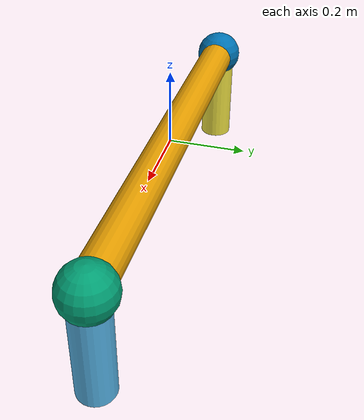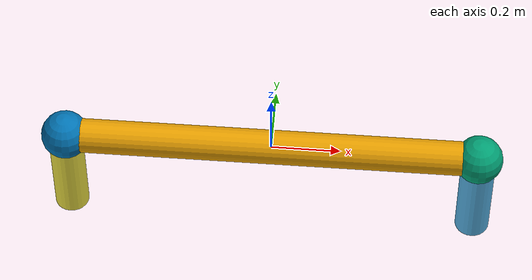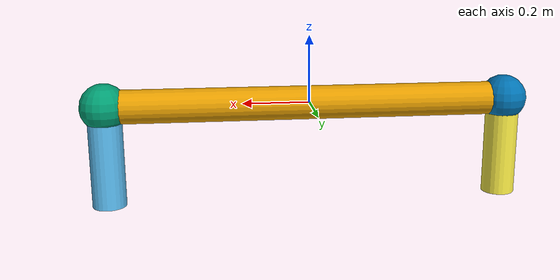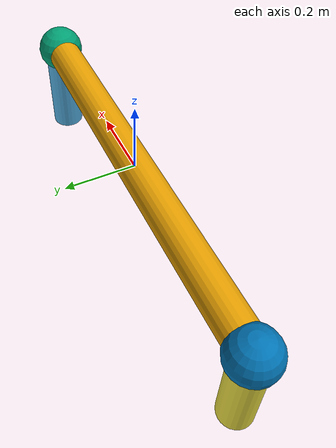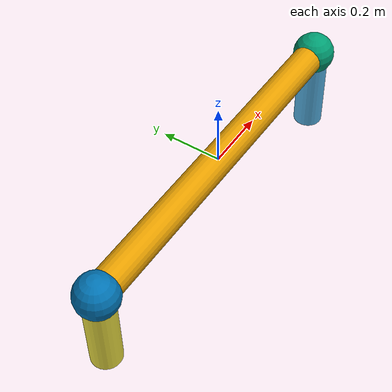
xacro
<?xml version="1.0"?>

<robot name="linkage">
  <link name="base_link">
        <visual>
          <origin xyz="0 0 0" rpy="0 1.57079633 0"/>
          <geometry>
              <cylinder length="1.2" radius="0.05"/>
          </geometry>
        </visual>
  </link>
  <!--left joint and connection-->
  <link name="left_connector">
        <visual>
          <origin xyz="0 0 -0.15"/>
          <geometry>
            <cylinder length="0.3" radius="0.05"/>
          </geometry>
      </visual>
  </link>
  <link name="left_joint_body">
    <visual>
      <origin xyz="0 0 0"/>
      <geometry>
        <sphere radius="0.07"/>
      </geometry>
    </visual>
  </link>
  <joint name="left_joint_roll" type="fixed">
    <parent link="base_link"/>
    <child link="left_joint_body"/>
    <origin xyz="0.6 0 0"/>
  </joint>
  <joint name="left_joint_yaw" type="fixed">
    <parent link="left_joint_body"/>
    <child link="left_connector"/>
    <origin xyz="0 0 0"/>
  </joint>

  <!--right joint and connection-->
  <link name="right_connector">
        <visual>
          <origin xyz="0 0 -0.15"/>
          <geometry>
            <cylinder length="0.3" radius="0.05"/>
          </geometry>
      </visual>
  </link>
  <link name="right_joint_body">
    <visual>
      <origin xyz="0 0 0"/>
      <geometry>
        <sphere radius="0.07"/>
      </geometry>
    </visual>
  </link>
  <joint name="right_joint_roll" type="fixed">
    <parent link="base_link"/>
    <child link="right_joint_body"/>
    <origin xyz="-0.6 0 0"/>
  </joint>
  <joint name="right_joint_yaw" type="fixed">
    <parent link="right_joint_body"/>
    <child link="right_connector"/>
    <origin xyz="0 0 0"/>
  </joint>

</robot>
